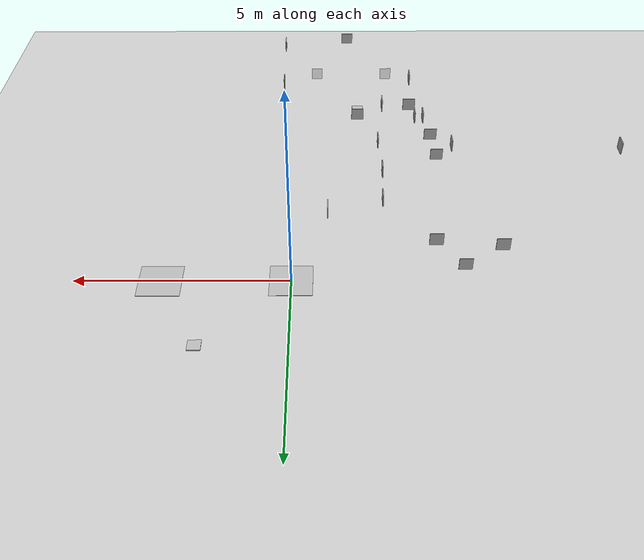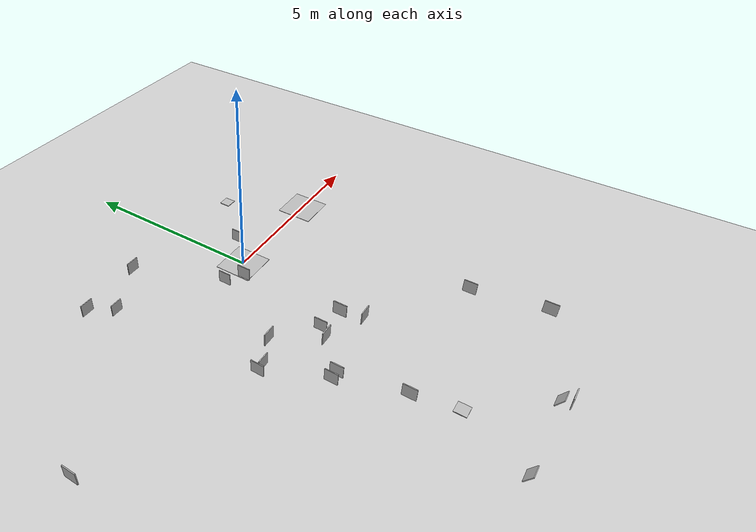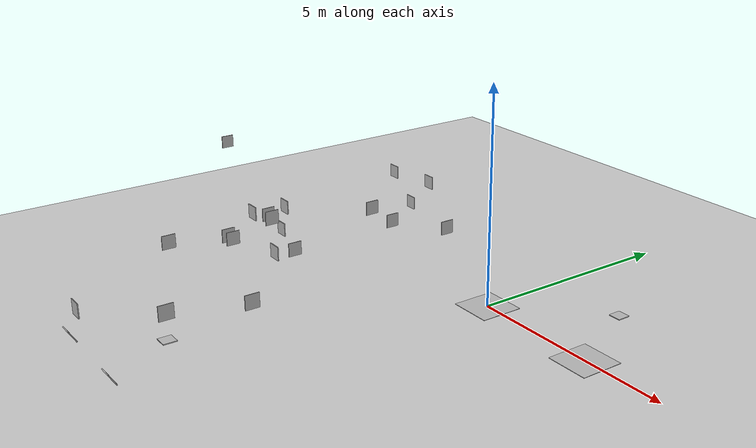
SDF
<sdf version="1.6">
 <world name="default">
  <include><uri>model://ground_plane</uri></include>
  <include><uri>model://sun</uri></include>
  <include><uri>model://tag_land</uri><pose>3 0 0 0 0 0</pose></include>
  <include><uri>model://tag_takeoff</uri></include>
  <include><uri>model://conjAprilTags</uri></include>
 </world>
</sdf>

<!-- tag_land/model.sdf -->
<sdf version='1.6'>
  <model name='tag_takeoff'>
    <link name='link_1'>
      <pose frame=''>0 0 0 0 -0 0</pose>
      <inertial>
        <mass>1</mass>
        <inertia>
          <ixx>0.166667</ixx>
          <ixy>0</ixy>
          <ixz>0</ixz>
          <iyy>0.166667</iyy>
          <iyz>0</iyz>
          <izz>0.166667</izz>
        </inertia>
        <pose frame=''>0 0 0 0 -0 0</pose>
      </inertial>
      <gravity>1</gravity>
      <self_collide>0</self_collide>
      <kinematic>0</kinematic>
      <visual name='visual'>
        <pose frame=''>0 0 0 0 -0 0</pose>
        <geometry>
          <box>
            <size>1 1 0.01</size>
          </box>
        </geometry>
        <material>
          <script>
            <uri>file://tags_material/scripts/tags.material</uri>
            <name>Tag_takeoff</name>
          </script>
        </material>
        <transparency>0</transparency>
        <cast_shadows>1</cast_shadows>
      </visual>
      <collision name='collision'>
        <laser_retro>0</laser_retro>
        <max_contacts>10</max_contacts>
        <pose frame=''>0 0 0 0 -0 0</pose>
        <geometry>
          <box>
            <size>1 1 0.01</size>
          </box>
        </geometry>
        <surface>
          <friction>
            <ode>
              <mu>1</mu>
              <mu2>1</mu2>
              <fdir1>0 0 0</fdir1>
              <slip1>0</slip1>
              <slip2>0</slip2>
            </ode>
            <torsional>
              <coefficient>1</coefficient>
              <patch_radius>0</patch_radius>
              <surface_radius>0</surface_radius>
              <use_patch_radius>1</use_patch_radius>
              <ode>
                <slip>0</slip>
              </ode>
            </torsional>
          </friction>
          <bounce>
            <restitution_coefficient>0</restitution_coefficient>
            <threshold>1e+06</threshold>
          </bounce>
          <contact>
            <collide_without_contact>0</collide_without_contact>
            <collide_without_contact_bitmask>1</collide_without_contact_bitmask>
            <collide_bitmask>1</collide_bitmask>
            <ode>
              <soft_cfm>0</soft_cfm>
              <soft_erp>0.2</soft_erp>
              <kp>1e+13</kp>
              <kd>1</kd>
              <max_vel>0.01</max_vel>
              <min_depth>0</min_depth>
            </ode>
            <bullet>
              <split_impulse>1</split_impulse>
              <split_impulse_penetration_threshold>-0.01</split_impulse_penetration_threshold>
              <soft_cfm>0</soft_cfm>
              <soft_erp>0.2</soft_erp>
              <kp>1e+13</kp>
              <kd>1</kd>
            </bullet>
          </contact>
        </surface>
      </collision>
    </link>
    <static>0</static>
    <allow_auto_disable>1</allow_auto_disable>
  </model>
</sdf>

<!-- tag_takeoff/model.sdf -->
<sdf version='1.6'>
  <model name='tag_land'>
    <link name='link_1'>
      <pose frame=''>0 0 0 0 -0 0</pose>
      <inertial>
        <mass>1</mass>
        <inertia>
          <ixx>0.166667</ixx>
          <ixy>0</ixy>
          <ixz>0</ixz>
          <iyy>0.166667</iyy>
          <iyz>0</iyz>
          <izz>0.166667</izz>
        </inertia>
        <pose frame=''>0 0 0 0 -0 0</pose>
      </inertial>
      <gravity>1</gravity>
      <self_collide>0</self_collide>
      <kinematic>0</kinematic>
      <visual name='visual'>
        <pose frame=''>0 0 0 0 -0 0</pose>
        <geometry>
          <box>
            <size>1 1 0.01</size>
          </box>
        </geometry>
        <material>
          <script>
            <uri>file://tags_material/scripts/tags.material</uri>
            <name>Tag_land</name>
          </script>
        </material>
        <transparency>0</transparency>
        <cast_shadows>1</cast_shadows>
      </visual>
      <collision name='collision'>
        <laser_retro>0</laser_retro>
        <max_contacts>10</max_contacts>
        <pose frame=''>0 0 0 0 -0 0</pose>
        <geometry>
          <box>
            <size>1 1 0.01</size>
          </box>
        </geometry>
        <surface>
          <friction>
            <ode>
              <mu>1</mu>
              <mu2>1</mu2>
              <fdir1>0 0 0</fdir1>
              <slip1>0</slip1>
              <slip2>0</slip2>
            </ode>
            <torsional>
              <coefficient>1</coefficient>
              <patch_radius>0</patch_radius>
              <surface_radius>0</surface_radius>
              <use_patch_radius>1</use_patch_radius>
              <ode>
                <slip>0</slip>
              </ode>
            </torsional>
          </friction>
          <bounce>
            <restitution_coefficient>0</restitution_coefficient>
            <threshold>1e+06</threshold>
          </bounce>
          <contact>
            <collide_without_contact>0</collide_without_contact>
            <collide_without_contact_bitmask>1</collide_without_contact_bitmask>
            <collide_bitmask>1</collide_bitmask>
            <ode>
              <soft_cfm>0</soft_cfm>
              <soft_erp>0.2</soft_erp>
              <kp>1e+13</kp>
              <kd>1</kd>
              <max_vel>0.01</max_vel>
              <min_depth>0</min_depth>
            </ode>
            <bullet>
              <split_impulse>1</split_impulse>
              <split_impulse_penetration_threshold>-0.01</split_impulse_penetration_threshold>
              <soft_cfm>0</soft_cfm>
              <soft_erp>0.2</soft_erp>
              <kp>1e+13</kp>
              <kd>1</kd>
            </bullet>
          </contact>
        </surface>
      </collision>
    </link>
    <static>0</static>
    <allow_auto_disable>1</allow_auto_disable>
  </model>
</sdf>

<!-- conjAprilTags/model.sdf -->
<sdf version='1.6'>
  <model name='conjAprilTags'>
    <model name='tag_0'>
      <pose frame=''>-3.817 0.7 1.12 -1.57079 -1.57079 3.14159</pose>
      <static>1</static>
      <link name='link'>
        <collision name='collision'>
          <geometry>
            <box>
              <size>0.3 0.3 0.02</size>
            </box>
          </geometry>
          <max_contacts>10</max_contacts>
          <surface>
            <contact>
              <ode/>
            </contact>
            <bounce/>
            <friction>
              <torsional>
                <ode/>
              </torsional>
              <ode/>
            </friction>
          </surface>
        </collision>
        <visual name='visual'>
          <geometry>
            <box>
              <size>0.3 0.3 0.02</size>
            </box>
          </geometry>
          <material>
            <script>
              <uri>file://tags_material/scripts/tags.material</uri>
              <name>Tag36_11_00000</name>
            </script>
          </material>
        </visual>
        <self_collide>0</self_collide>
        <kinematic>0</kinematic>
      </link>
      <static>0</static>
    </model>
    <model name='tag_1'>
      <pose frame=''>-2.583 -8.289 0.74 0 -1.03 -1.5708</pose>
      <static>1</static>
      <link name='link'>
        <collision name='collision'>
          <geometry>
            <box>
              <size>0.3 0.3 0.02</size>
            </box>
          </geometry>
          <max_contacts>10</max_contacts>
          <surface>
            <contact>
              <ode/>
            </contact>
            <bounce/>
            <friction>
              <torsional>
                <ode/>
              </torsional>
              <ode/>
            </friction>
          </surface>
        </collision>
        <visual name='visual'>
          <geometry>
            <box>
              <size>0.3 0.3 0.02</size>
            </box>
          </geometry>
          <material>
            <script>
              <uri>file://tags_material/scripts/tags.material</uri>
              <name>Tag36_11_00001</name>
            </script>
          </material>
        </visual>
        <self_collide>0</self_collide>
        <kinematic>0</kinematic>
      </link>
      <static>0</static>
    </model>
    <model name='tag_2'>
      <pose frame=''>-3.304 -4.474 1.65 3.14159 -1.57079 3.14159</pose>
      <static>1</static>
      <link name='link'>
        <collision name='collision'>
          <geometry>
            <box>
              <size>0.3 0.3 0.02</size>
            </box>
          </geometry>
          <max_contacts>10</max_contacts>
          <surface>
            <contact>
              <ode/>
            </contact>
            <bounce/>
            <friction>
              <torsional>
                <ode/>
              </torsional>
              <ode/>
            </friction>
          </surface>
        </collision>
        <visual name='visual'>
          <geometry>
            <box>
              <size>0.3 0.3 0.02</size>
            </box>
          </geometry>
          <material>
            <script>
              <uri>file://tags_material/scripts/tags.material</uri>
              <name>Tag36_11_00002</name>
            </script>
          </material>
        </visual>
        <self_collide>0</self_collide>
        <kinematic>0</kinematic>
      </link>
      <static>0</static>
    </model>
    <model name='tag_3'>
      <pose frame=''>-2.103 -1.589 2.006 3.14159 -1.57079 3.14159</pose>
      <static>1</static>
      <link name='link'>
        <collision name='collision'>
          <geometry>
            <box>
              <size>0.3 0.3 0.02</size>
            </box>
          </geometry>
          <max_contacts>10</max_contacts>
          <surface>
            <contact>
              <ode/>
            </contact>
            <bounce/>
            <friction>
              <torsional>
                <ode/>
              </torsional>
              <ode/>
            </friction>
          </surface>
        </collision>
        <visual name='visual'>
          <geometry>
            <box>
              <size>0.3 0.3 0.02</size>
            </box>
          </geometry>
          <material>
            <script>
              <uri>file://tags_material/scripts/tags.material</uri>
              <name>Tag36_11_00003</name>
            </script>
          </material>
        </visual>
        <self_collide>0</self_collide>
        <kinematic>0</kinematic>
      </link>
      <static>0</static>
    </model>
    <model name='tag_4'>
      <pose frame=''>-4.549 0.727 1.7 -1.57079 -1.57079 3.14159</pose>
      <static>1</static>
      <link name='link'>
        <collision name='collision'>
          <geometry>
            <box>
              <size>0.3 0.3 0.02</size>
            </box>
          </geometry>
          <max_contacts>10</max_contacts>
          <surface>
            <contact>
              <ode/>
            </contact>
            <bounce/>
            <friction>
              <torsional>
                <ode/>
              </torsional>
              <ode/>
            </friction>
          </surface>
        </collision>
        <visual name='visual'>
          <geometry>
            <box>
              <size>0.3 0.3 0.02</size>
            </box>
          </geometry>
          <material>
            <script>
              <uri>file://tags_material/scripts/tags.material</uri>
              <name>Tag36_11_00004</name>
            </script>
          </material>
        </visual>
        <self_collide>0</self_collide>
        <kinematic>0</kinematic>
      </link>
      <static>0</static>
    </model>
    <model name='tag_5'>
      <pose frame=''>-0.839 -0.497 1.7 3.14159 -1.57079 3.14159</pose>
      <static>1</static>
      <link name='link'>
        <collision name='collision'>
          <geometry>
            <box>
              <size>0.3 0.3 0.02</size>
            </box>
          </geometry>
          <max_contacts>10</max_contacts>
          <surface>
            <contact>
              <ode/>
            </contact>
            <bounce/>
            <friction>
              <torsional>
                <ode/>
              </torsional>
              <ode/>
            </friction>
          </surface>
        </collision>
        <visual name='visual'>
          <geometry>
            <box>
              <size>0.3 0.3 0.02</size>
            </box>
          </geometry>
          <material>
            <script>
              <uri>file://tags_material/scripts/tags.material</uri>
              <name>Tag36_11_00005</name>
            </script>
          </material>
        </visual>
        <self_collide>0</self_collide>
        <kinematic>0</kinematic>
      </link>
      <static>0</static>
    </model>
    <model name='tag_6'>
      <pose frame=''>-3.535 -3.0625 1.4 1.57079 -1.57079 3.14159</pose>
      <static>1</static>
      <link name='link'>
        <collision name='collision'>
          <geometry>
            <box>
              <size>0.3 0.3 0.02</size>
            </box>
          </geometry>
          <max_contacts>10</max_contacts>
          <surface>
            <contact>
              <ode/>
            </contact>
            <bounce/>
            <friction>
              <torsional>
                <ode/>
              </torsional>
              <ode/>
            </friction>
          </surface>
        </collision>
        <visual name='visual'>
          <geometry>
            <box>
              <size>0.3 0.3 0.02</size>
            </box>
          </geometry>
          <material>
            <script>
              <uri>file://tags_material/scripts/tags.material</uri>
              <name>Tag36_11_00006</name>
            </script>
          </material>
        </visual>
        <self_collide>0</self_collide>
        <kinematic>0</kinematic>
      </link>
      <static>0</static>
    </model>
    <model name='tag_7'>
      <pose frame=''>-2.101 -1.051 1.587 3.14159 -1.57079 3.14159</pose>
      <static>1</static>
      <link name='link'>
        <collision name='collision'>
          <geometry>
            <box>
              <size>0.3 0.3 0.02</size>
            </box>
          </geometry>
          <max_contacts>10</max_contacts>
          <surface>
            <contact>
              <ode/>
            </contact>
            <bounce/>
            <friction>
              <torsional>
                <ode/>
              </torsional>
              <ode/>
            </friction>
          </surface>
        </collision>
        <visual name='visual'>
          <geometry>
            <box>
              <size>0.3 0.3 0.02</size>
            </box>
          </geometry>
          <material>
            <script>
              <uri>file://tags_material/scripts/tags.material</uri>
              <name>Tag36_11_00007</name>
            </script>
          </material>
        </visual>
        <self_collide>0</self_collide>
        <kinematic>0</kinematic>
      </link>
      <static>0</static>
    </model>
    <model name='tag_8'>
      <pose frame=''>0.294 -5.82 1.872 3.14159 -1.57079 3.14159</pose>
      <static>1</static>
      <link name='link'>
        <collision name='collision'>
          <geometry>
            <box>
              <size>0.3 0.3 0.02</size>
            </box>
          </geometry>
          <max_contacts>10</max_contacts>
          <surface>
            <contact>
              <ode/>
            </contact>
            <bounce/>
            <friction>
              <torsional>
                <ode/>
              </torsional>
              <ode/>
            </friction>
          </surface>
        </collision>
        <visual name='visual'>
          <geometry>
            <box>
              <size>0.3 0.3 0.02</size>
            </box>
          </geometry>
          <material>
            <script>
              <uri>file://tags_material/scripts/tags.material</uri>
              <name>Tag36_11_00008</name>
            </script>
          </material>
        </visual>
        <self_collide>0</self_collide>
        <kinematic>0</kinematic>
      </link>
      <static>0</static>
    </model>
    <model name='tag_9'>
      <pose frame=''>-1.435 -8.478 1.8 1.57079 -1.57079 3.14159</pose>
      <static>1</static>
      <link name='link'>
        <collision name='collision'>
          <geometry>
            <box>
              <size>0.3 0.3 0.02</size>
            </box>
          </geometry>
          <max_contacts>10</max_contacts>
          <surface>
            <contact>
              <ode/>
            </contact>
            <bounce/>
            <friction>
              <torsional>
                <ode/>
              </torsional>
              <ode/>
            </friction>
          </surface>
        </collision>
        <visual name='visual'>
          <geometry>
            <box>
              <size>0.3 0.3 0.02</size>
            </box>
          </geometry>
          <material>
            <script>
              <uri>file://tags_material/scripts/tags.material</uri>
              <name>Tag36_11_00009</name>
            </script>
          </material>
        </visual>
        <self_collide>0</self_collide>
        <kinematic>0</kinematic>
      </link>
      <static>0</static>
    </model>
    <model name='tag_10'>
      <pose frame=''>-1.614 -4.295 1.8 -1.57079 -1.57079 3.14159</pose>
      <static>1</static>
      <link name='link'>
        <collision name='collision'>
          <geometry>
            <box>
              <size>0.3 0.3 0.02</size>
            </box>
          </geometry>
          <max_contacts>10</max_contacts>
          <surface>
            <contact>
              <ode/>
            </contact>
            <bounce/>
            <friction>
              <torsional>
                <ode/>
              </torsional>
              <ode/>
            </friction>
          </surface>
        </collision>
        <visual name='visual'>
          <geometry>
            <box>
              <size>0.3 0.3 0.02</size>
            </box>
          </geometry>
          <material>
            <script>
              <uri>file://tags_material/scripts/tags.material</uri>
              <name>Tag36_11_00010</name>
            </script>
          </material>
        </visual>
        <self_collide>0</self_collide>
        <kinematic>0</kinematic>
      </link>
      <static>0</static>
    </model>
    <model name='tag_11'>
      <pose frame=''>-3.338 -3.071 1.99 1.57079 -1.57079 3.14159</pose>
      <static>1</static>
      <link name='link'>
        <collision name='collision'>
          <geometry>
            <box>
              <size>0.3 0.3 0.02</size>
            </box>
          </geometry>
          <max_contacts>10</max_contacts>
          <surface>
            <contact>
              <ode/>
            </contact>
            <bounce/>
            <friction>
              <torsional>
                <ode/>
              </torsional>
              <ode/>
            </friction>
          </surface>
        </collision>
        <visual name='visual'>
          <geometry>
            <box>
              <size>0.3 0.3 0.02</size>
            </box>
          </geometry>
          <material>
            <script>
              <uri>file://tags_material/scripts/tags.material</uri>
              <name>Tag36_11_00011</name>
            </script>
          </material>
        </visual>
        <self_collide>0</self_collide>
        <kinematic>0</kinematic>
      </link>
      <static>0</static>
    </model>
    <model name='tag_12'>
      <pose frame=''>-3.128 0.72 1.83 -1.57079 -1.57079 3.14159</pose>
      <static>1</static>
      <link name='link'>
        <collision name='collision'>
          <geometry>
            <box>
              <size>0.3 0.3 0.02</size>
            </box>
          </geometry>
          <max_contacts>10</max_contacts>
          <surface>
            <contact>
              <ode/>
            </contact>
            <bounce/>
            <friction>
              <torsional>
                <ode/>
              </torsional>
              <ode/>
            </friction>
          </surface>
        </collision>
        <visual name='visual'>
          <geometry>
            <box>
              <size>0.3 0.3 0.02</size>
            </box>
          </geometry>
          <material>
            <script>
              <uri>file://tags_material/scripts/tags.material</uri>
              <name>Tag36_11_00012</name>
            </script>
          </material>
        </visual>
        <self_collide>0</self_collide>
        <kinematic>0</kinematic>
      </link>
      <static>0</static>
    </model>
    <model name='tag_13'>
      <pose frame=''>-2.11 -3.543 1.51 3.14159 -1.57079 3.14159</pose>
      <static>1</static>
      <link name='link'>
        <collision name='collision'>
          <geometry>
            <box>
              <size>0.02 0.3 0.3</size>
            </box>
          </geometry>
          <max_contacts>10</max_contacts>
          <surface>
            <contact>
              <ode/>
            </contact>
            <bounce/>
            <friction>
              <torsional>
                <ode/>
              </torsional>
              <ode/>
            </friction>
          </surface>
        </collision>
        <visual name='visual'>
          <geometry>
            <box>
              <size>0.3 0.3 0.02</size>
            </box>
          </geometry>
          <material>
            <script>
              <uri>file://tags_material/scripts/tags.material</uri>
              <name>Tag36_11_00013</name>
            </script>
          </material>
        </visual>
        <self_collide>0</self_collide>
        <kinematic>0</kinematic>
      </link>
      <static>0</static>
    </model>
    <model name='tag_14'>
      <pose frame=''>-2.884 -4.091 2.215 1.57079 -1.57079 3.14159</pose>
      <static>1</static>
      <link name='link'>
        <collision name='collision'>
          <geometry>
            <box>
              <size>0.3 0.02 0.3</size>
            </box>
          </geometry>
          <max_contacts>10</max_contacts>
          <surface>
            <contact>
              <ode/>
            </contact>
            <bounce/>
            <friction>
              <torsional>
                <ode/>
              </torsional>
              <ode/>
            </friction>
          </surface>
        </collision>
        <visual name='visual'>
          <geometry>
            <box>
              <size>0.3 0.3 0.02</size>
            </box>
          </geometry>
          <material>
            <script>
              <uri>file://tags_material/scripts/tags.material</uri>
              <name>Tag36_11_00014</name>
            </script>
          </material>
        </visual>
        <self_collide>0</self_collide>
        <kinematic>0</kinematic>
      </link>
      <static>0</static>
    </model>
    <model name='tag_15'>
      <pose frame=''>-7.694 -2.223 2.208 7e-06 -1.57079 -3.14159</pose>
      <static>1</static>
      <link name='link'>
        <collision name='collision'>
          <geometry>
            <box>
              <size>0.02 0.3 0.3</size>
            </box>
          </geometry>
          <max_contacts>10</max_contacts>
          <surface>
            <contact>
              <ode/>
            </contact>
            <bounce/>
            <friction>
              <torsional>
                <ode/>
              </torsional>
              <ode/>
            </friction>
          </surface>
        </collision>
        <visual name='visual'>
          <geometry>
            <box>
              <size>0.3 0.3 0.02</size>
            </box>
          </geometry>
          <material>
            <script>
              <uri>file://tags_material/scripts/tags.material</uri>
              <name>Tag36_11_00015</name>
            </script>
          </material>
        </visual>
        <self_collide>0</self_collide>
        <kinematic>0</kinematic>
      </link>
      <static>0</static>
    </model>
    <model name='tag_16'>
      <pose frame=''>-3.094 -4.474 1.65 7e-06 -1.57079 -3.14159</pose>
      <static>1</static>
      <link name='link'>
        <collision name='collision'>
          <geometry>
            <box>
              <size>0.3 0.3 0.02</size>
            </box>
          </geometry>
          <max_contacts>10</max_contacts>
          <surface>
            <contact>
              <ode/>
            </contact>
            <bounce/>
            <friction>
              <torsional>
                <ode/>
              </torsional>
              <ode/>
            </friction>
          </surface>
        </collision>
        <visual name='visual'>
          <geometry>
            <box>
              <size>0.3 0.3 0.02</size>
            </box>
          </geometry>
          <material>
            <script>
              <uri>file://tags_material/scripts/tags.material</uri>
              <name>Tag36_11_00016</name>
            </script>
          </material>
        </visual>
        <self_collide>0</self_collide>
        <kinematic>0</kinematic>
      </link>
      <static>0</static>
    </model>
    <model name='tag_17'>
      <pose frame=''>-3.902 -3.178 1.65 3.14159 -1.57079 3.14159</pose>
      <static>1</static>
      <link name='link'>
        <collision name='collision'>
          <geometry>
            <box>
              <size>0.3 0.3 0.02</size>
            </box>
          </geometry>
          <max_contacts>10</max_contacts>
          <surface>
            <contact>
              <ode/>
            </contact>
            <bounce/>
            <friction>
              <torsional>
                <ode/>
              </torsional>
              <ode/>
            </friction>
          </surface>
        </collision>
        <visual name='visual'>
          <geometry>
            <box>
              <size>0.3 0.3 0.02</size>
            </box>
          </geometry>
          <material>
            <script>
              <uri>file://tags_material/scripts/tags.material</uri>
              <name>Tag36_11_00017</name>
            </script>
          </material>
        </visual>
        <self_collide>0</self_collide>
        <kinematic>0</kinematic>
      </link>
      <static>0</static>
    </model>
    <model name='tag_18'>
      <pose frame=''>-1.712 -6.69 0.496 0 -0 0</pose>
      <static>1</static>
      <link name='link'>
        <collision name='collision'>
          <geometry>
            <box>
              <size>0.3 0.3 0.02</size>
            </box>
          </geometry>
          <max_contacts>10</max_contacts>
          <surface>
            <contact>
              <ode/>
            </contact>
            <bounce/>
            <friction>
              <torsional>
                <ode/>
              </torsional>
              <ode/>
            </friction>
          </surface>
        </collision>
        <visual name='visual'>
          <geometry>
            <box>
              <size>0.3 0.3 0.02</size>
            </box>
          </geometry>
          <material>
            <script>
              <uri>file://tags_material/scripts/tags.material</uri>
              <name>Tag36_11_00018</name>
            </script>
          </material>
        </visual>
        <self_collide>0</self_collide>
        <kinematic>0</kinematic>
      </link>
      <static>0</static>
    </model>
    <model name='tag_19'>
      <pose frame=''>-3.045 -5.939 1.935 3.14159 -1.57079 3.14159</pose>
      <static>1</static>
      <link name='link'>
        <collision name='collision'>
          <geometry>
            <box>
              <size>0.3 0.3 0.02</size>
            </box>
          </geometry>
          <max_contacts>10</max_contacts>
          <surface>
            <contact>
              <ode/>
            </contact>
            <bounce/>
            <friction>
              <torsional>
                <ode/>
              </torsional>
              <ode/>
            </friction>
          </surface>
        </collision>
        <visual name='visual'>
          <geometry>
            <box>
              <size>0.3 0.3 0.02</size>
            </box>
          </geometry>
          <material>
            <script>
              <uri>file://tags_material/scripts/tags.material</uri>
              <name>Tag36_11_00019</name>
            </script>
          </material>
        </visual>
        <self_collide>0</self_collide>
        <kinematic>0</kinematic>
      </link>
      <static>0</static>
    </model>
    <model name='tag_20'>
      <pose frame=''>0.293 -7.471 2.131 3.14159 -1.57079 3.14159</pose>
      <static>1</static>
      <link name='link'>
        <collision name='collision'>
          <geometry>
            <box>
              <size>0.3 0.3 0.02</size>
            </box>
          </geometry>
          <max_contacts>10</max_contacts>
          <surface>
            <contact>
              <ode/>
            </contact>
            <bounce/>
            <friction>
              <torsional>
                <ode/>
              </torsional>
              <ode/>
            </friction>
          </surface>
        </collision>
        <visual name='visual'>
          <geometry>
            <box>
              <size>0.3 0.3 0.02</size>
            </box>
          </geometry>
          <material>
            <script>
              <uri>file://tags_material/scripts/tags.material</uri>
              <name>Tag36_11_00020</name>
            </script>
          </material>
        </visual>
        <self_collide>0</self_collide>
        <kinematic>0</kinematic>
      </link>
      <static>0</static>
    </model>
    <model name='tag_21'>
      <pose frame=''>-2.201 -4.003 2.293 3.14159 -1.57079 3.14159</pose>
      <static>1</static>
      <link name='link'>
        <collision name='collision'>
          <geometry>
            <box>
              <size>0.3 0.3 0.02</size>
            </box>
          </geometry>
          <max_contacts>10</max_contacts>
          <surface>
            <contact>
              <ode/>
            </contact>
            <bounce/>
            <friction>
              <torsional>
                <ode/>
              </torsional>
              <ode/>
            </friction>
          </surface>
        </collision>
        <visual name='visual'>
          <geometry>
            <box>
              <size>0.3 0.3 0.02</size>
            </box>
          </geometry>
          <material>
            <script>
              <uri>file://tags_material/scripts/tags.material</uri>
              <name>Tag36_11_00021</name>
            </script>
          </material>
        </visual>
        <self_collide>0</self_collide>
        <kinematic>0</kinematic>
      </link>
      <static>0</static>
    </model>
    <model name='tag_22'>
      <pose frame=''>-0.559 -8.289 0.74 0 -1.03 -1.5708</pose>
      <static>1</static>
      <link name='link'>
        <collision name='collision'>
          <geometry>
            <box>
              <size>0.3 0.3 0.02</size>
            </box>
          </geometry>
          <max_contacts>10</max_contacts>
          <surface>
            <contact>
              <ode/>
            </contact>
            <bounce/>
            <friction>
              <torsional>
                <ode/>
              </torsional>
              <ode/>
            </friction>
          </surface>
        </collision>
        <visual name='visual'>
          <geometry>
            <box>
              <size>0.3 0.3 0.02</size>
            </box>
          </geometry>
          <material>
            <script>
              <uri>file://tags_material/scripts/tags.material</uri>
              <name>Tag36_11_00022</name>
            </script>
          </material>
        </visual>
        <self_collide>0</self_collide>
        <kinematic>0</kinematic>
      </link>
      <static>0</static>
    </model>
    <model name='tag_23'>
      <pose frame=''>2 2 0 0 -0 0</pose>
      <static>1</static>
      <link name='link'>
        <collision name='collision'>
          <geometry>
            <box>
              <size>0.3 0.3 0.02</size>
            </box>
          </geometry>
          <max_contacts>10</max_contacts>
          <surface>
            <contact>
              <ode/>
            </contact>
            <bounce/>
            <friction>
              <torsional>
                <ode/>
              </torsional>
              <ode/>
            </friction>
          </surface>
        </collision>
        <visual name='visual'>
          <geometry>
            <box>
              <size>0.3 0.3 0.02</size>
            </box>
          </geometry>
          <material>
            <script>
              <uri>file://tags_material/scripts/tags.material</uri>
              <name>Tag36_11_00023</name>
            </script>
          </material>
        </visual>
        <self_collide>0</self_collide>
        <kinematic>0</kinematic>
      </link>
      <static>0</static>
    </model>
  </model>
</sdf>
